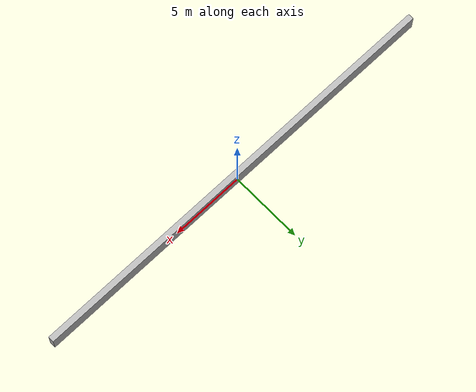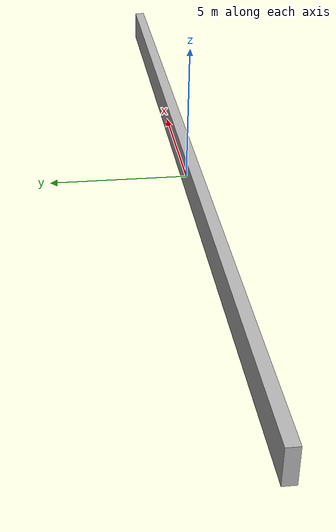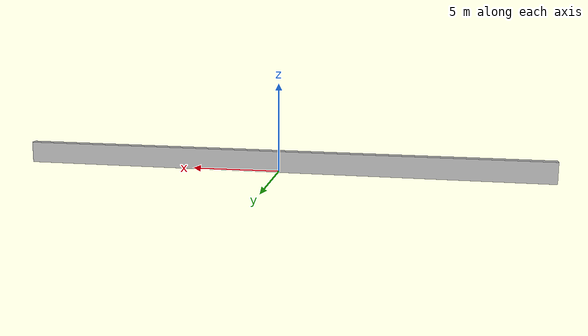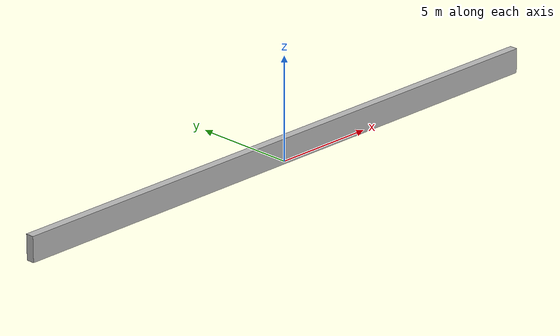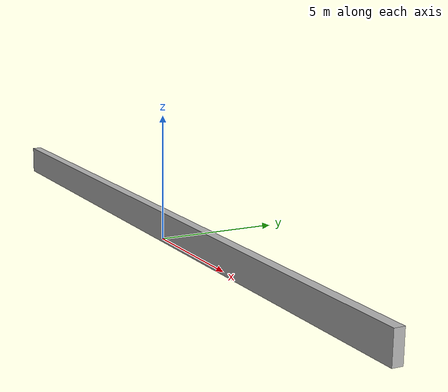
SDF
<?xml version="1.0"?>
<!-- Hedge wall: foliage box 30 x 0.4 x 1.2 m, base on ground (Z-up mesh).
     Mesh source is 28 m long, scaled 30/28 along its length to match. -->
<sdf version="1.6">
  <model name="hedge">
    <static>true</static>
    <link name="link">
      <visual name="visual">
        <geometry><mesh><uri>model://hedge/meshes/hedge.obj</uri><scale>1.07143 1 1</scale></mesh></geometry>
      </visual>
      <collision name="collision">
        <pose>0 0 0.6 0 0 0</pose>
        <geometry><box><size>30 0.4 1.2</size></box></geometry>
      </collision>
    </link>
  </model>
</sdf>
